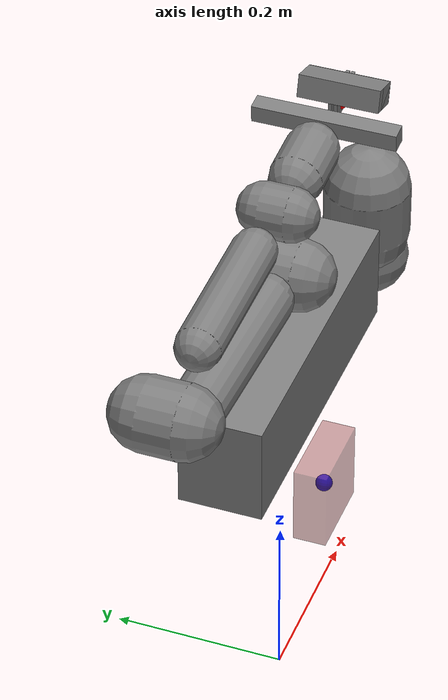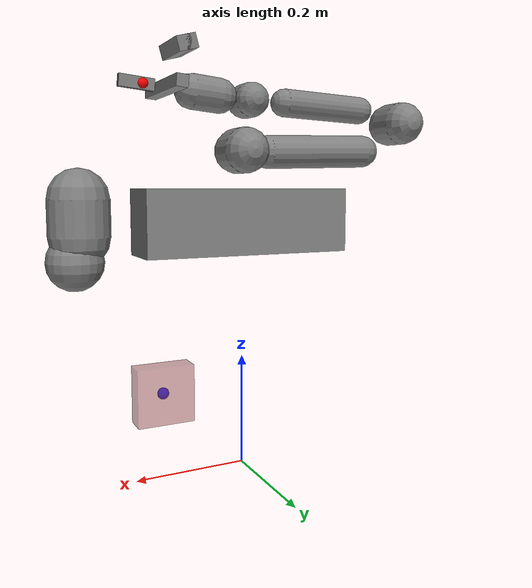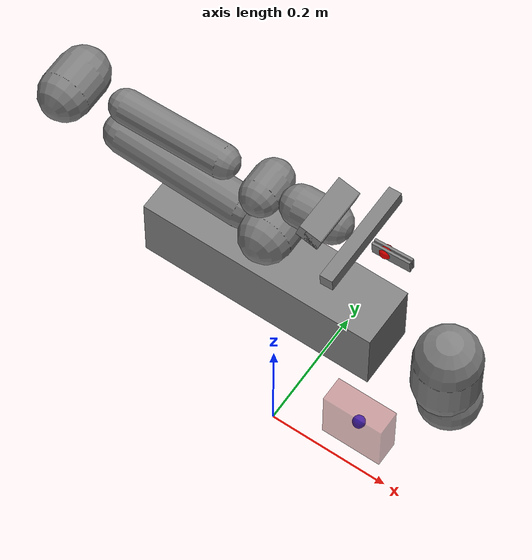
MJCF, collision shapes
<mujoco model="floatin scene">
  <include file="piper_l_floating.xml"/>

  <statistic center="0 0 0.1" extent="0.6"/>

  <visual>
    <headlight diffuse="0.6 0.6 0.6" ambient="0.3 0.3 0.3" specular="0 0 0"/>
    <rgba haze="0.15 0.25 0.35 1"/>
    <global azimuth="120" elevation="-20"/>
  </visual>

  <asset>
    <texture type="skybox" builtin="gradient" rgb1="0.3 0.5 0.7" rgb2="0 0 0" width="512" height="3072"/>
    <texture type="2d" name="groundplane" builtin="checker" mark="edge" rgb1="0.2 0.3 0.4" rgb2="0.1 0.2 0.3"
      markrgb="0.8 0.8 0.8" width="300" height="300"/>
    <material name="groundplane" texture="groundplane" texuniform="true" texrepeat="5 5" reflectance="0.2"/>
  </asset>

  <worldbody>
    <light pos="0 0 1.5" dir="0 0 -1" directional="true"/>

    <body name="target" pos="0.15 0. 0.15" quat="-0.5 0.5 0.5 0.5" mocap="true">
      <geom type="box" size=".05 .05 .02" contype="0" conaffinity="0" rgba=".6 .3 .3 .5"/>
      <site type="sphere" size="0.01" rgba="0 0 1 1" group="1"/>
    </body>

  </worldbody>
</mujoco>

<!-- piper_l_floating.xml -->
<mujoco model="go2_description">
    <compiler angle="radian" autolimits="true"/>

    <option cone="elliptic" impratio="100"/>

    <default>
        <default class="go2">
            <joint axis="0 1 0"/>
            <geom friction="0.6" margin="0.001"/>

            <default class="visual">
                <geom type="mesh" contype="0" conaffinity="0" group="2"/>
            </default>
            <default class="collision">
                <geom group="3"/>
            </default>
        </default>

    </default>

    <asset>
        <material name="metal" rgba=".9 .95 .95 1"/>
        <material name="black" rgba="0 0 0 1"/>
        <material name="white" rgba="1 1 1 1"/>
        <material name="gray" rgba="0.671705 0.692426 0.774270 1"/>

        <mesh file="go2/assets/base_0.obj"/>
        <mesh file="go2/assets/base_1.obj"/>
        <mesh file="go2/assets/base_2.obj"/>
        <mesh file="go2/assets/base_3.obj"/>
        <mesh file="go2/assets/base_4.obj"/>

        <mesh name="base_link" file="piper_l/assets/base_link.STL"/>
        <mesh name="link1" file="piper_l/assets/link1.STL"/>
        <mesh name="link2" file="piper_l/assets/link2.STL"/>
        <mesh name="link3" file="piper_l/assets/link3.STL"/>
        <mesh name="link4" file="piper_l/assets/link4.STL"/>
        <mesh name="link5" file="piper_l/assets/link5.STL"/>
        <mesh name="link7" file="piper_l/assets/link7.STL"/>
        <mesh name="link8" file="piper_l/assets/link8.STL"/>
        <mesh name="gripper_base_100_v3" file="piper_l/assets/gripper_base_100_v3.STL"/>
        <mesh name="realsense_mid_stand_v2" content_type="model/stl" file="piper_l/assets/realsense_mid_stand_v2.STL"/>
    </asset>

    <worldbody>
        <body name="base" pos="0 0 0.445" childclass="go2">
            <inertial pos="0.021112 0 -0.005366" quat="-0.000543471 0.713435 -0.00173769 0.700719" mass="6.921"
                      diaginertia="0.107027 0.0980771 0.0244531"/>

            <geom mesh="base_0" material="black" class="visual"/>
            <geom mesh="base_1" material="black" class="visual"/>
            <geom mesh="base_2" material="black" class="visual"/>
            <geom mesh="base_3" material="white" class="visual"/>
            <geom mesh="base_4" material="gray" class="visual"/>
            <geom size="0.1881 0.04675 0.057" type="box" class="collision"/>
            <geom size="0.05 0.03" pos="0.285 0 0.01" type="capsule" class="collision"/>
            <geom size="0.047" pos="0.293 0 -0.06" class="collision"/>
            <site name="imu" pos="-0.02557 0 0.04232"/>

            <joint axis="0 1 0" name="basepitch" pos="0 0 0" type="hinge" range="-0.2 0.2"/>
            <joint axis="0 0 1" name="basez" pos="0 0 0" type="slide" range="-0.1 0.1"/>

            <geom type="mesh" rgba="1 1 1 1" mesh="base_link" class="visual"/>
            <body name="link1" pos="0 0 0.123">
            <inertial pos="0.00201 -0.0022 -0.02127" quat="0.721009 0.591428 -0.23148 0.277084" mass="0.11" diaginertia="0.000114473 0.000110765 7.12023e-05"/>
            <joint name="joint1" pos="0 0 0" axis="0 0 1" range="-2.618 2.618" damping="0.1" armature="0.01" frictionloss="0.1"/>

            <geom type="mesh" rgba="1 1 1 1" mesh="link1" class="visual"/>
            <!--geom size="0.04 0.015" pos="0 0.0 -0.05" quat="1 0 0 1" type="capsule" class="collision"/-->

            <body name="link2" quat="-0.0616195 0.0616141 0.704419 0.704416">
                <inertial pos="0.25986 -0.00913 0.00237" quat="0.33951 0.630002 0.324014 0.618745" mass="1.16" diaginertia="0.0163176 0.0162777 0.000957388"/>
                <joint name="joint2" pos="0 0 0" axis="0 0 1" range="0 3.14" damping="0.1" armature="0.01" frictionloss="0.1"/>

                <geom type="mesh" rgba="1 1 1 1" mesh="link2" class="visual"/>
                <geom size="0.04 0.02" pos="0 0.0 0.0" quat="1 0 0 1" type="capsule" class="collision"/>
                <geom size="0.03 0.10" pos="0.15 -0.025 0.0" quat="1 0 1 -0.15" type="capsule" class="collision"/>

                <body name="link3" pos="0.33823 0 0" quat="0.608799 0 0 -0.793324">
                <inertial pos="-0.00726 -0.19029 -0.00045" quat="0.709181 0.703284 -0.0204559 0.0451178" mass="0.59" diaginertia="0.00558951 0.00554224 0.000258829"/>
                <joint name="joint3" pos="0 0 0" axis="0 0 1" range="-2.697 0" damping="0.1" armature="0.01" frictionloss="0.1"/>

                <geom type="mesh" rgba="1 1 1 1" mesh="link3" class="visual"/>
                <geom size="0.04 0.02" pos="0 0.0 0.0" quat="1 0 0 1" type="capsule" class="collision"/>
                <geom size="0.025 0.08" pos="-0.01 -0.17 0.0" quat="1 1 0 0.05" type="capsule" class="collision"/>

                <body name="link4" pos="0 -0.3215 0" quat="0.707105 0.707108 0 0">
                    <inertial pos="0.00054 -0.00162 -0.00399" quat="0.859761 0.0861299 -0.104595 0.492395" mass="0.37" diaginertia="0.000174523 0.000169749 0.000142038"/>
                    <joint name="joint4" pos="0 0 0" axis="0 0 1" range="-1.832 1.832" damping="0.1" armature="0.01" frictionloss="0.1"/>

                    <geom type="mesh" rgba="1 1 1 1" mesh="link4" class="visual"/>
                    <geom size="0.03 0.015" pos="0 0.0 0.0" quat="1 1 0 0" type="capsule" class="collision"/>

                    <body name="link5" quat="0.707105 -0.707108 0 0">
                    <inertial pos="0.0002 -0.06142 -0.00257" quat="0.609413 0.425035 -0.377108 0.552947" mass="0.38" diaginertia="0.000302439 0.000295278 0.000150843"/>
                    <joint name="joint5" pos="0 0 0" axis="0 0 -1" range="-1.22 1.22" damping="0.1" armature="0.01" frictionloss="0.1"/>

                    <geom type="mesh" rgba="1 1 1 1" mesh="link5" class="visual"/>
                    <geom size="0.03 0.025" pos="0 -0.08 0.0" quat="1 1 0 0" type="capsule" class="collision"/>

                    <body name="link6" pos="0 -0.091 0" quat="0.707105 0.707108 0 0">
                        <inertial pos="-0.0687204 -0.0345478 -0.0118222" quat="0.466886 0.464856 -0.533085 0.530799" mass="0.0776323" diaginertia="0.00391665 0.00388904 0.000528525"/>
                        <joint name="joint6" pos="0 0 0" axis="0 0 1" range="-3.14 3.14" damping="0.1" armature="0.01" frictionloss="0.1"/>
                        <geom pos="0.008 -0.002 0.064" quat="0.500398 -0.5 -0.499602 0.5" type="mesh" rgba="1 1 1 1" mesh="gripper_base_100_v3" class="visual"/>
                        <geom size="0.082 0.01 0.01" pos="0.0 -0.0 0.06" quat="0.500398 -0.5 -0.499602 0.5" type="box" class="collision"/>

                        <geom pos="-0.034 -0.002 0.023" quat="0.000563312 -0.706825 0.707388 0.000562864" type="mesh" mesh="realsense_mid_stand_v2" class="visual"/>
                        <geom size="0.012525 0.045 0.0125" pos="-0.0740961 -0.03 0.03725" quat="0.819648 0 -0.572867 0" type="box" class="visual"/>
                        <geom size="0.017 0.045 0.0125" pos="-0.0760961 -0.03 0.032" quat="0.819648 0 -0.572867 0" type="box" class="collision"/>

                        <!--geom size="0.01 0.03  0.002" pos="0.0 -0.003 0.11" quat="0.707105 0.707108 0 0" type="box" class="collision"/-->
                        <site name="attachment_site" size="0.01" pos="0 0 0.1" rgba="1 0 0 1" group="1"/>

                        <body name="link7" pos="0 0 0.13503" quat="0.707105 0.707108 0 0">
                        <inertial pos="0.000277817 -0.0467674 -0.0092103" quat="0.553273 0.439968 -0.46134 0.536174" mass="0.0264822" diaginertia="1.45133e-05 1.0004e-05 5.87021e-06"/>
                        <joint name="joint7" pos="0 0 0" axis="0 0 -1" type="slide" range="0 0.05" damping="2" armature="0.01" frictionloss="0.1"/>
                        <geom type="mesh" rgba="0.7 0.7 0.7 1" mesh="link7" class="visual"/>
                        <geom size="0.01 0.03  0.002" pos="0.0 -0.025 -0.003" quat="1 0 0 0" type="box" class="collision"/>

                        </body>
                        <body name="link8" pos="0 0 0.13503" quat="0.707105 -0.707108 0 0">
                        <inertial pos="0.000277817 0.0467674 -0.0092103" quat="0.553273 0.439968 -0.46134 0.536174" mass="0.0264822" diaginertia="1.45133e-05 1.0004e-05 5.87021e-06"/>
                        <joint name="joint8" pos="0 0 0" axis="0 0 1" type="slide" range="-0.05 0" damping="2" armature="0.01" frictionloss="0.1"/>
                        <geom type="mesh" rgba="0.792157 0.819608 0.933333 1" mesh="link8" class="visual"/>
                        <geom size="0.01 0.03  0.002" pos="0.0 0.025 -0.003" quat="1 0 0 0" type="box" class="collision"/>

                        </body>

                    </body>
                    </body>
                </body>
                </body>
            </body>
            </body>
        </body>
    </worldbody>

    <equality>
        <joint joint1="joint8" joint2="joint7" polycoef="0 -1 0 0 0"/>
    </equality>

    <keyframe>
        <key name="home" qpos="0 0. -0. -0. 0 0 0 0"/>
    </keyframe>
</mujoco>
